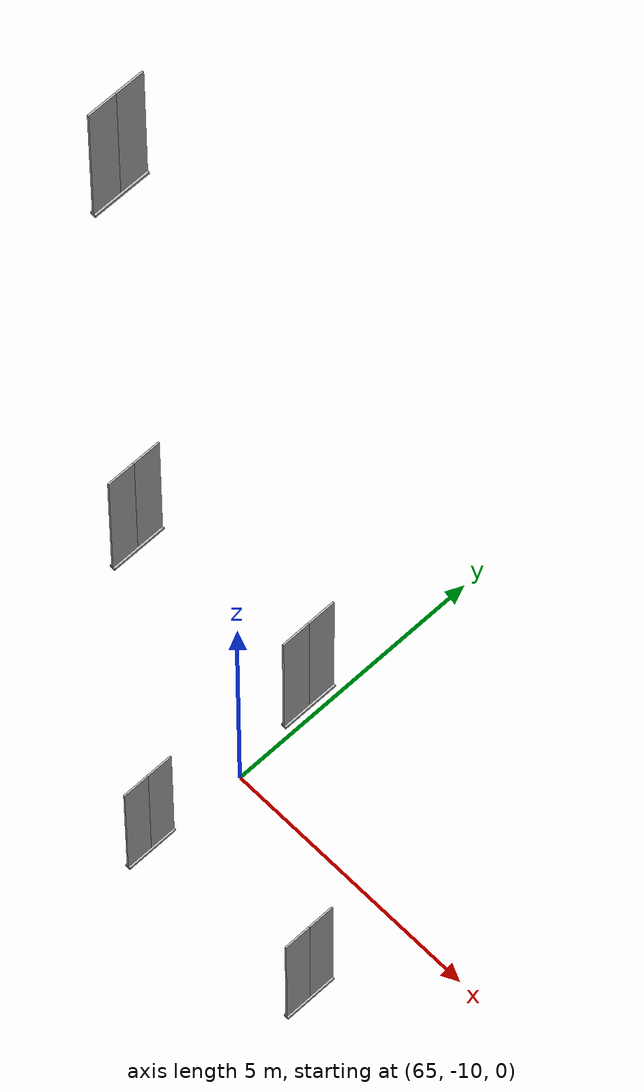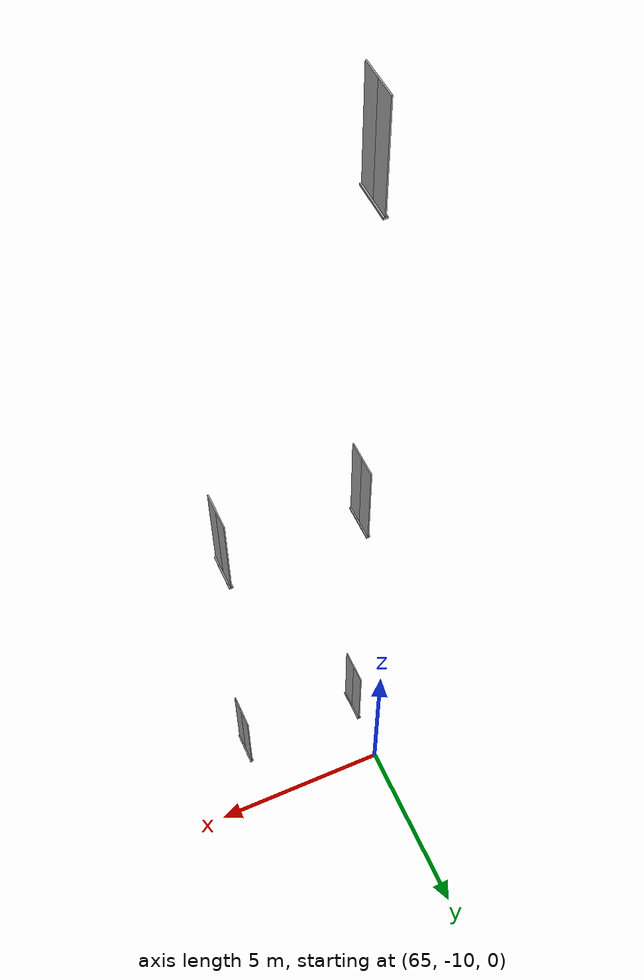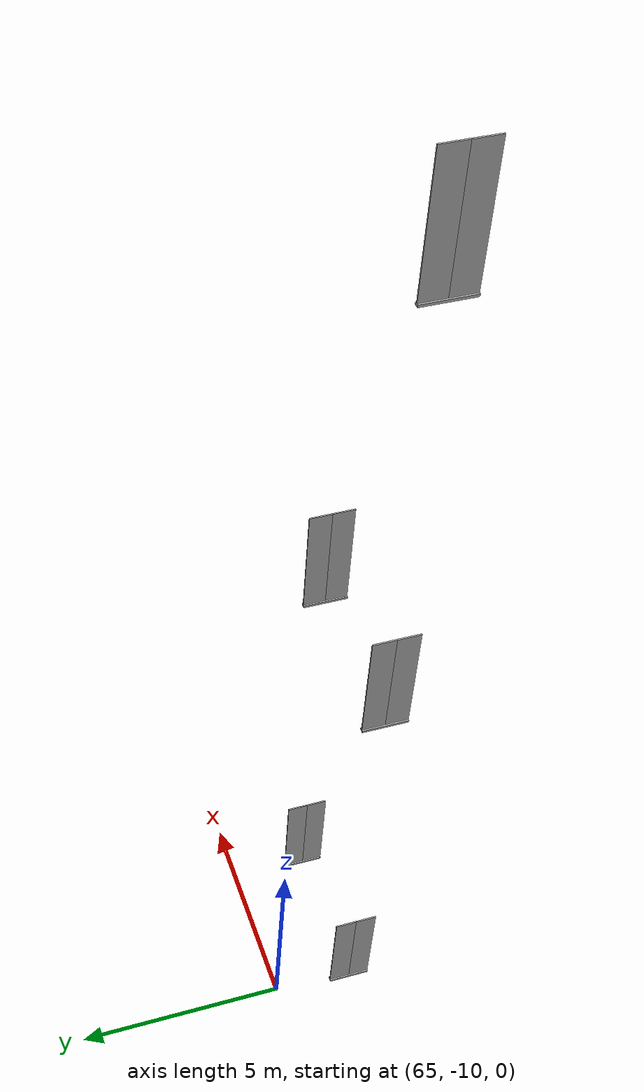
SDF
<sdf version="1.7">
 <world name="world">
  <include><uri>model://sun</uri></include>
  <model name="ShaftDoor_Lift3_L1_door">
   <pose>64.9 -11.875 0.0 0 0 1.5708</pose>
   <link name="right_door">
    <pose>0.25 0 1.25 0 0 0</pose>
    <visual name="right_door_visual">
     <geometry><box><size>0.5 0.03 2.5</size></box></geometry>
     <material>
      <ambient>0.5 0.5 0.5 1</ambient>
      <diffuse>0.7 0.7 0.7 1</diffuse>
      <specular>0.6 0.6 0.6 1</specular>
      <emissive>0.1 0.1 0.1 1</emissive>
     </material>
    </visual>
    <collision name="right_door_collision">
     <geometry><box><size>0.5 0.03 2.5</size></box></geometry>
     <surface><contact><collide_bitmask>0x02</collide_bitmask></contact></surface>
    </collision>
   </link>
   <joint name="right_joint" type="prismatic">
    <parent>world</parent>
    <child>right_door</child>
    <axis><xyz>1 0 0</xyz><limit><lower>0</lower><upper>0.5</upper></limit></axis>
   </joint>
   <link name="left_door">
    <pose>-0.25 0 1.25 0 0 0</pose>
    <visual name="left_door_visual">
     <geometry><box><size>0.5 0.03 2.5</size></box></geometry>
     <material>
      <ambient>0.5 0.5 0.5 1</ambient>
      <diffuse>0.7 0.7 0.7 1</diffuse>
      <specular>0.6 0.6 0.6 1</specular>
      <emissive>0.1 0.1 0.1 1</emissive>
     </material>
    </visual>
    <collision name="left_door_collision">
     <geometry><box><size>0.5 0.03 2.5</size></box></geometry>
     <surface><contact><collide_bitmask>0x02</collide_bitmask></contact></surface>
    </collision>
   </link>
   <joint name="left_joint" type="prismatic">
    <parent>world</parent>
    <child>left_door</child>
    <axis><xyz>1 0 0</xyz><limit><lower>-0.5</lower><upper>0</upper></limit></axis>
   </joint>
   <link name="ramp">
    <pose>0 0 -0.025 0 0 0</pose>
    <visual name="ramp_visual">
     <geometry><box><size>1.0 0.1 0.05</size></box></geometry>
     <material>
      <ambient>0.5 0.5 0.5 1</ambient>
      <diffuse>0.7 0.7 0.7 1</diffuse>
      <specular>0.6 0.6 0.6 1</specular>
      <emissive>0.1 0.1 0.1 1</emissive>
     </material>
    </visual>
    <collision name="ramp_collision">
     <geometry><box><size>1.0 0.1 0.05</size></box></geometry>
     <surface><contact><collide_bitmask>0x02</collide_bitmask></contact></surface>
    </collision>
   </link>
   <joint name="ramp_joint" type="fixed"><parent>world</parent><child>ramp</child></joint>
   <plugin name="door" filename="libdoor.so">
    <v_max_door>0.3</v_max_door>
    <a_max_door>0.2</a_max_door>
    <a_nom_door>0.1</a_nom_door>
    <dx_min_door>0.0001</dx_min_door>
    <f_max_door>35.0</f_max_door>
    <door left_joint_name="left_joint" name="ShaftDoor_Lift3_L1_door" right_joint_name="right_joint" type="DoubleSlidingDoor"/>
   </plugin>
  </model>
  <model name="ShaftDoor_Lift3_L2_door">
   <pose>64.9 -11.875 10.0 0 0 1.5708</pose>
   <link name="right_door">
    <pose>0.25 0 1.25 0 0 0</pose>
    <visual name="right_door_visual">
     <geometry><box><size>0.5 0.03 2.5</size></box></geometry>
     <material>
      <ambient>0.5 0.5 0.5 1</ambient>
      <diffuse>0.7 0.7 0.7 1</diffuse>
      <specular>0.6 0.6 0.6 1</specular>
      <emissive>0.1 0.1 0.1 1</emissive>
     </material>
    </visual>
    <collision name="right_door_collision">
     <geometry><box><size>0.5 0.03 2.5</size></box></geometry>
     <surface><contact><collide_bitmask>0x02</collide_bitmask></contact></surface>
    </collision>
   </link>
   <joint name="right_joint" type="prismatic">
    <parent>world</parent>
    <child>right_door</child>
    <axis><xyz>1 0 0</xyz><limit><lower>0</lower><upper>0.5</upper></limit></axis>
   </joint>
   <link name="left_door">
    <pose>-0.25 0 1.25 0 0 0</pose>
    <visual name="left_door_visual">
     <geometry><box><size>0.5 0.03 2.5</size></box></geometry>
     <material>
      <ambient>0.5 0.5 0.5 1</ambient>
      <diffuse>0.7 0.7 0.7 1</diffuse>
      <specular>0.6 0.6 0.6 1</specular>
      <emissive>0.1 0.1 0.1 1</emissive>
     </material>
    </visual>
    <collision name="left_door_collision">
     <geometry><box><size>0.5 0.03 2.5</size></box></geometry>
     <surface><contact><collide_bitmask>0x02</collide_bitmask></contact></surface>
    </collision>
   </link>
   <joint name="left_joint" type="prismatic">
    <parent>world</parent>
    <child>left_door</child>
    <axis><xyz>1 0 0</xyz><limit><lower>-0.5</lower><upper>0</upper></limit></axis>
   </joint>
   <link name="ramp">
    <pose>0 0 -0.025 0 0 0</pose>
    <visual name="ramp_visual">
     <geometry><box><size>1.0 0.1 0.05</size></box></geometry>
     <material>
      <ambient>0.5 0.5 0.5 1</ambient>
      <diffuse>0.7 0.7 0.7 1</diffuse>
      <specular>0.6 0.6 0.6 1</specular>
      <emissive>0.1 0.1 0.1 1</emissive>
     </material>
    </visual>
    <collision name="ramp_collision">
     <geometry><box><size>1.0 0.1 0.05</size></box></geometry>
     <surface><contact><collide_bitmask>0x02</collide_bitmask></contact></surface>
    </collision>
   </link>
   <joint name="ramp_joint" type="fixed"><parent>world</parent><child>ramp</child></joint>
   <plugin name="door" filename="libdoor.so">
    <v_max_door>0.3</v_max_door>
    <a_max_door>0.2</a_max_door>
    <a_nom_door>0.1</a_nom_door>
    <dx_min_door>0.0001</dx_min_door>
    <f_max_door>35.0</f_max_door>
    <door left_joint_name="left_joint" name="ShaftDoor_Lift3_L2_door" right_joint_name="right_joint" type="DoubleSlidingDoor"/>
   </plugin>
  </model>
  <model name="ShaftDoor_guest_lift1_L3_door">
   <pose>64.875 -11.875 20.0 0 0 1.5708</pose>
   <link name="right_door">
    <pose>0.25 0 1.25 0 0 0</pose>
    <visual name="right_door_visual">
     <geometry><box><size>0.5 0.03 2.5</size></box></geometry>
     <material>
      <ambient>0.5 0.5 0.5 1</ambient>
      <diffuse>0.7 0.7 0.7 1</diffuse>
      <specular>0.6 0.6 0.6 1</specular>
      <emissive>0.1 0.1 0.1 1</emissive>
     </material>
    </visual>
    <collision name="right_door_collision">
     <geometry><box><size>0.5 0.03 2.5</size></box></geometry>
     <surface><contact><collide_bitmask>0x02</collide_bitmask></contact></surface>
    </collision>
   </link>
   <joint name="right_joint" type="prismatic">
    <parent>world</parent>
    <child>right_door</child>
    <axis><xyz>1 0 0</xyz><limit><lower>0</lower><upper>0.5</upper></limit></axis>
   </joint>
   <link name="left_door">
    <pose>-0.25 0 1.25 0 0 0</pose>
    <visual name="left_door_visual">
     <geometry><box><size>0.5 0.03 2.5</size></box></geometry>
     <material>
      <ambient>0.5 0.5 0.5 1</ambient>
      <diffuse>0.7 0.7 0.7 1</diffuse>
      <specular>0.6 0.6 0.6 1</specular>
      <emissive>0.1 0.1 0.1 1</emissive>
     </material>
    </visual>
    <collision name="left_door_collision">
     <geometry><box><size>0.5 0.03 2.5</size></box></geometry>
     <surface><contact><collide_bitmask>0x02</collide_bitmask></contact></surface>
    </collision>
   </link>
   <joint name="left_joint" type="prismatic">
    <parent>world</parent>
    <child>left_door</child>
    <axis><xyz>1 0 0</xyz><limit><lower>-0.5</lower><upper>0</upper></limit></axis>
   </joint>
   <link name="ramp">
    <pose>0 0 -0.025 0 0 0</pose>
    <visual name="ramp_visual">
     <geometry><box><size>1.0 0.1 0.05</size></box></geometry>
     <material>
      <ambient>0.5 0.5 0.5 1</ambient>
      <diffuse>0.7 0.7 0.7 1</diffuse>
      <specular>0.6 0.6 0.6 1</specular>
      <emissive>0.1 0.1 0.1 1</emissive>
     </material>
    </visual>
    <collision name="ramp_collision">
     <geometry><box><size>1.0 0.1 0.05</size></box></geometry>
     <surface><contact><collide_bitmask>0x02</collide_bitmask></contact></surface>
    </collision>
   </link>
   <joint name="ramp_joint" type="fixed"><parent>world</parent><child>ramp</child></joint>
   <plugin name="door" filename="libdoor.so">
    <v_max_door>0.3</v_max_door>
    <a_max_door>0.2</a_max_door>
    <a_nom_door>0.1</a_nom_door>
    <dx_min_door>0.0001</dx_min_door>
    <f_max_door>35.0</f_max_door>
    <door left_joint_name="left_joint" name="ShaftDoor_guest_lift1_L3_door" right_joint_name="right_joint" type="DoubleSlidingDoor"/>
   </plugin>
  </model>
  <model name="ShaftDoor_guest_lift3_L1_door">
   <pose>68.525 -11.875 0.0 0 0 1.5708</pose>
   <link name="right_door">
    <pose>0.25 0 1.25 0 0 0</pose>
    <visual name="right_door_visual">
     <geometry><box><size>0.5 0.03 2.5</size></box></geometry>
     <material>
      <ambient>0.5 0.5 0.5 1</ambient>
      <diffuse>0.7 0.7 0.7 1</diffuse>
      <specular>0.6 0.6 0.6 1</specular>
      <emissive>0.1 0.1 0.1 1</emissive>
     </material>
    </visual>
    <collision name="right_door_collision">
     <geometry><box><size>0.5 0.03 2.5</size></box></geometry>
     <surface><contact><collide_bitmask>0x02</collide_bitmask></contact></surface>
    </collision>
   </link>
   <joint name="right_joint" type="prismatic">
    <parent>world</parent>
    <child>right_door</child>
    <axis><xyz>1 0 0</xyz><limit><lower>0</lower><upper>0.5</upper></limit></axis>
   </joint>
   <link name="left_door">
    <pose>-0.25 0 1.25 0 0 0</pose>
    <visual name="left_door_visual">
     <geometry><box><size>0.5 0.03 2.5</size></box></geometry>
     <material>
      <ambient>0.5 0.5 0.5 1</ambient>
      <diffuse>0.7 0.7 0.7 1</diffuse>
      <specular>0.6 0.6 0.6 1</specular>
      <emissive>0.1 0.1 0.1 1</emissive>
     </material>
    </visual>
    <collision name="left_door_collision">
     <geometry><box><size>0.5 0.03 2.5</size></box></geometry>
     <surface><contact><collide_bitmask>0x02</collide_bitmask></contact></surface>
    </collision>
   </link>
   <joint name="left_joint" type="prismatic">
    <parent>world</parent>
    <child>left_door</child>
    <axis><xyz>1 0 0</xyz><limit><lower>-0.5</lower><upper>0</upper></limit></axis>
   </joint>
   <link name="ramp">
    <pose>0 0 -0.025 0 0 0</pose>
    <visual name="ramp_visual">
     <geometry><box><size>1.0 0.1 0.05</size></box></geometry>
     <material>
      <ambient>0.5 0.5 0.5 1</ambient>
      <diffuse>0.7 0.7 0.7 1</diffuse>
      <specular>0.6 0.6 0.6 1</specular>
      <emissive>0.1 0.1 0.1 1</emissive>
     </material>
    </visual>
    <collision name="ramp_collision">
     <geometry><box><size>1.0 0.1 0.05</size></box></geometry>
     <surface><contact><collide_bitmask>0x02</collide_bitmask></contact></surface>
    </collision>
   </link>
   <joint name="ramp_joint" type="fixed"><parent>world</parent><child>ramp</child></joint>
   <plugin name="door" filename="libdoor.so">
    <v_max_door>0.3</v_max_door>
    <a_max_door>0.2</a_max_door>
    <a_nom_door>0.1</a_nom_door>
    <dx_min_door>0.0001</dx_min_door>
    <f_max_door>35.0</f_max_door>
    <door left_joint_name="left_joint" name="ShaftDoor_guest_lift3_L1_door" right_joint_name="right_joint" type="DoubleSlidingDoor"/>
   </plugin>
  </model>
  <model name="ShaftDoor_guest_lift3_L2_door">
   <pose>68.525 -11.875 10.0 0 0 1.5708</pose>
   <link name="right_door">
    <pose>0.25 0 1.25 0 0 0</pose>
    <visual name="right_door_visual">
     <geometry><box><size>0.5 0.03 2.5</size></box></geometry>
     <material>
      <ambient>0.5 0.5 0.5 1</ambient>
      <diffuse>0.7 0.7 0.7 1</diffuse>
      <specular>0.6 0.6 0.6 1</specular>
      <emissive>0.1 0.1 0.1 1</emissive>
     </material>
    </visual>
    <collision name="right_door_collision">
     <geometry><box><size>0.5 0.03 2.5</size></box></geometry>
     <surface><contact><collide_bitmask>0x02</collide_bitmask></contact></surface>
    </collision>
   </link>
   <joint name="right_joint" type="prismatic">
    <parent>world</parent>
    <child>right_door</child>
    <axis><xyz>1 0 0</xyz><limit><lower>0</lower><upper>0.5</upper></limit></axis>
   </joint>
   <link name="left_door">
    <pose>-0.25 0 1.25 0 0 0</pose>
    <visual name="left_door_visual">
     <geometry><box><size>0.5 0.03 2.5</size></box></geometry>
     <material>
      <ambient>0.5 0.5 0.5 1</ambient>
      <diffuse>0.7 0.7 0.7 1</diffuse>
      <specular>0.6 0.6 0.6 1</specular>
      <emissive>0.1 0.1 0.1 1</emissive>
     </material>
    </visual>
    <collision name="left_door_collision">
     <geometry><box><size>0.5 0.03 2.5</size></box></geometry>
     <surface><contact><collide_bitmask>0x02</collide_bitmask></contact></surface>
    </collision>
   </link>
   <joint name="left_joint" type="prismatic">
    <parent>world</parent>
    <child>left_door</child>
    <axis><xyz>1 0 0</xyz><limit><lower>-0.5</lower><upper>0</upper></limit></axis>
   </joint>
   <link name="ramp">
    <pose>0 0 -0.025 0 0 0</pose>
    <visual name="ramp_visual">
     <geometry><box><size>1.0 0.1 0.05</size></box></geometry>
     <material>
      <ambient>0.5 0.5 0.5 1</ambient>
      <diffuse>0.7 0.7 0.7 1</diffuse>
      <specular>0.6 0.6 0.6 1</specular>
      <emissive>0.1 0.1 0.1 1</emissive>
     </material>
    </visual>
    <collision name="ramp_collision">
     <geometry><box><size>1.0 0.1 0.05</size></box></geometry>
     <surface><contact><collide_bitmask>0x02</collide_bitmask></contact></surface>
    </collision>
   </link>
   <joint name="ramp_joint" type="fixed"><parent>world</parent><child>ramp</child></joint>
   <plugin name="door" filename="libdoor.so">
    <v_max_door>0.3</v_max_door>
    <a_max_door>0.2</a_max_door>
    <a_nom_door>0.1</a_nom_door>
    <dx_min_door>0.0001</dx_min_door>
    <f_max_door>35.0</f_max_door>
    <door left_joint_name="left_joint" name="ShaftDoor_guest_lift3_L2_door" right_joint_name="right_joint" type="DoubleSlidingDoor"/>
   </plugin>
  </model>
 </world>
</sdf>
